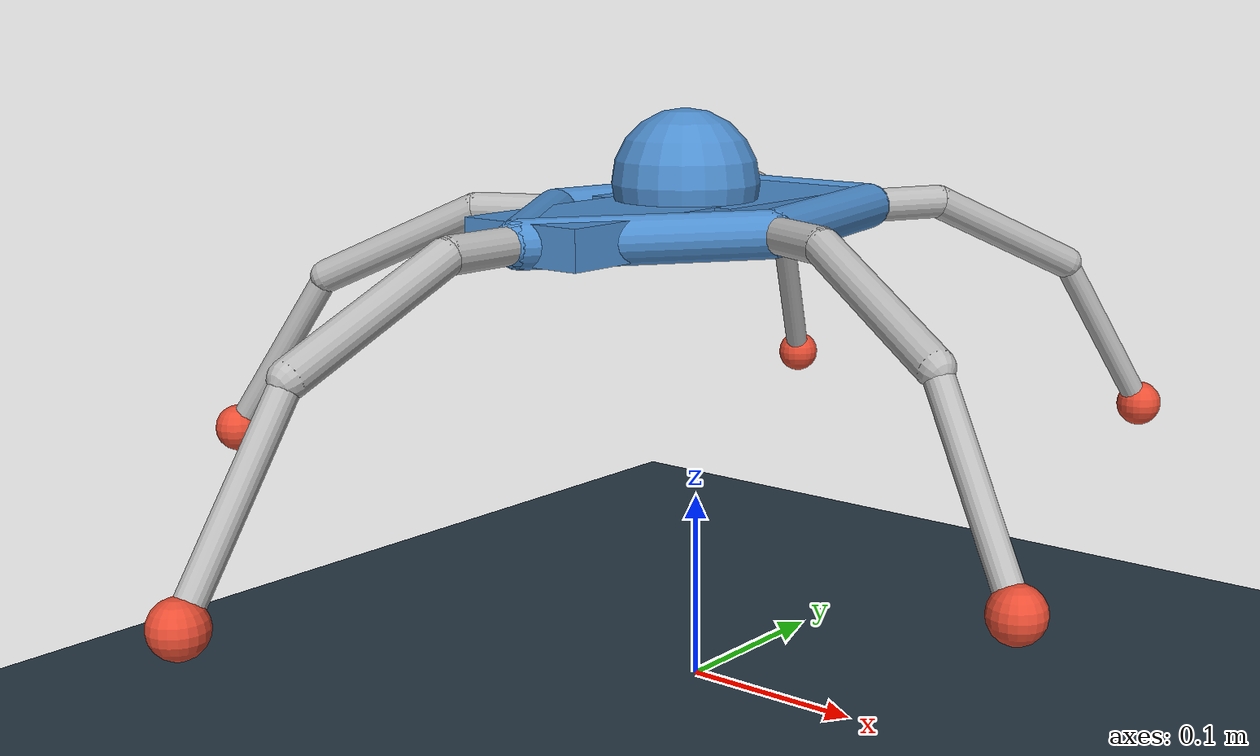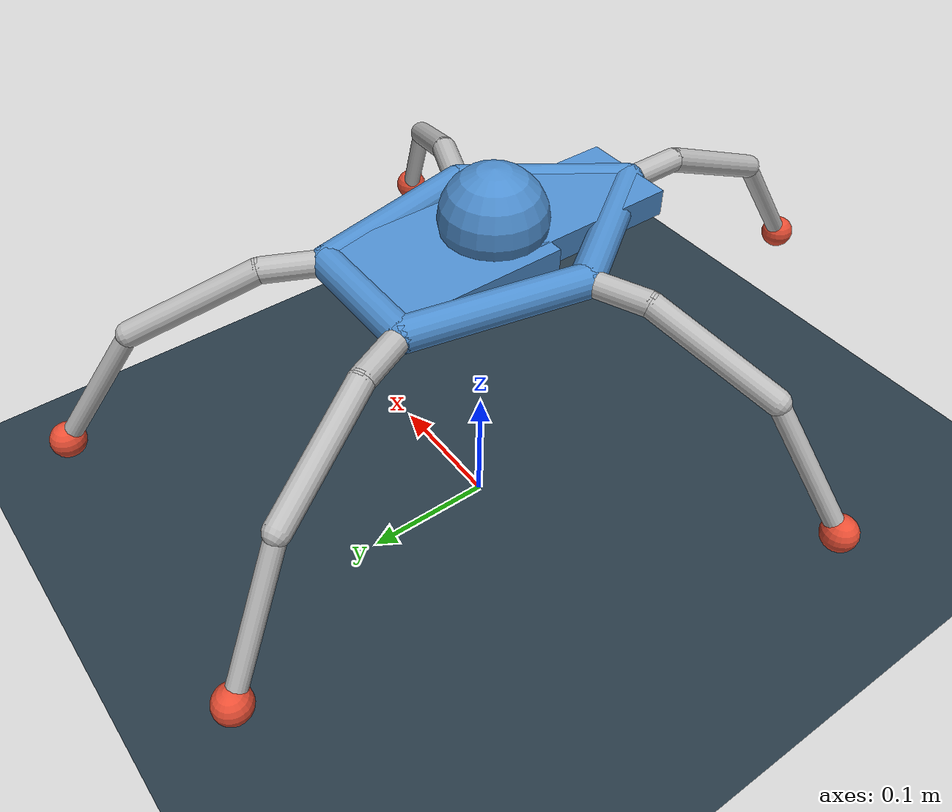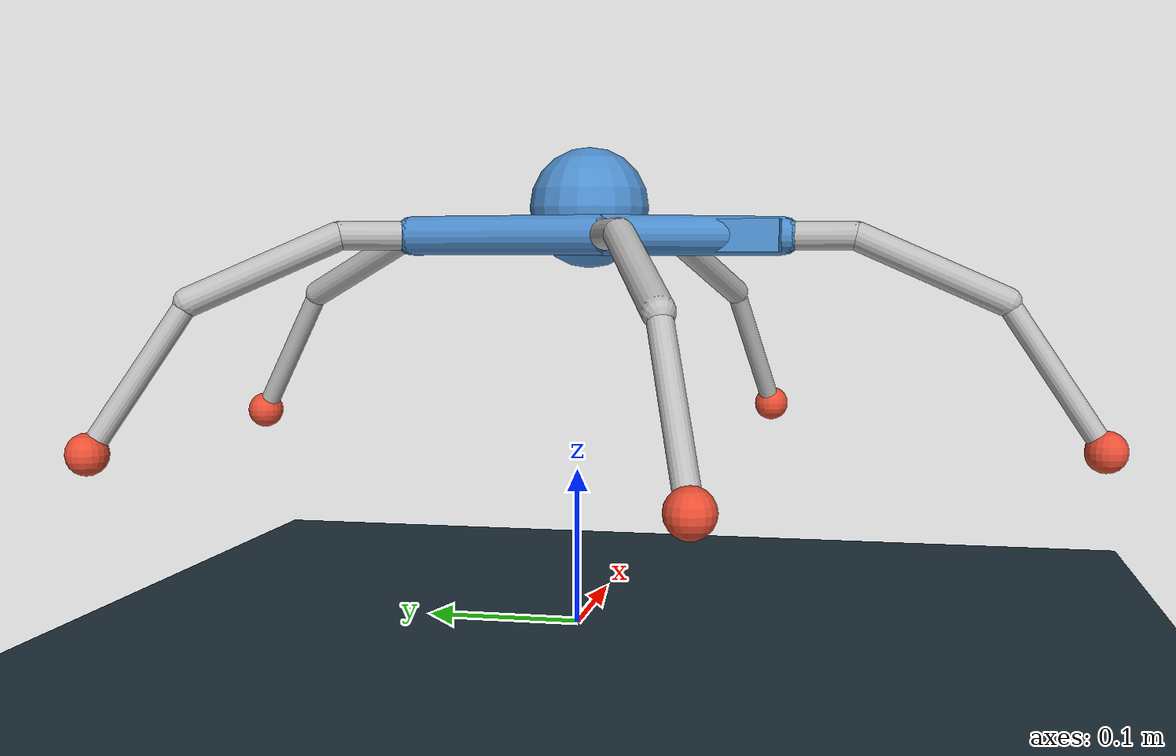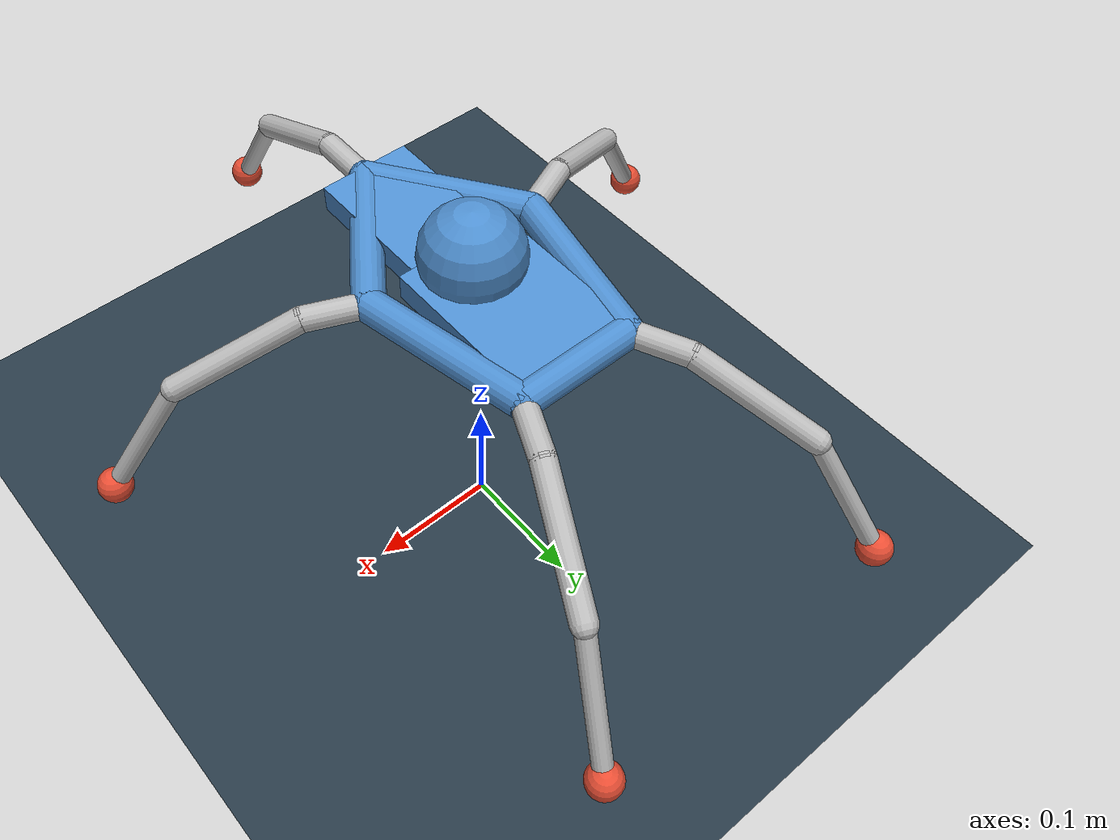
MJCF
<mujoco model="pentapod">
  <compiler angle="degree" autolimits="true"/>
  <option gravity="0 0 -9.81" timestep="0.002"/>

  <asset>
    <texture type="skybox" builtin="gradient" rgb1=".25 .35 .45" rgb2="0 0 0" width="32" height="512"/>
    <texture name="grid" type="2d" builtin="checker" width="512" height="512" rgb1=".12 .18 .22" rgb2=".18 .26 .32"/>
    <material name="grid"     texture="grid" texrepeat="4 4" texuniform="true" reflectance=".15"/>
    <material name="body_mat" rgba=".30 .55 .80 1"/>
    <material name="leg_mat"  rgba=".72 .72 .72 1"/>
    <material name="foot_mat" rgba=".90 .30 .20 1"/>
  </asset>

  <default>
    <joint damping="0.10" stiffness="0.0" frictionloss="0.01"/>
    <geom contype="1" conaffinity="1" condim="3" friction="0.8 0.005 0.0001"/>
    <position kp="5" forcelimited="true" forcerange="-2 2"/>
  </default>

  <contact>
    <exclude body1="base" body2="coxa_0"/>
    <exclude body1="base" body2="femur_0"/>
    <exclude body1="base" body2="tibia_0"/>
    <exclude body1="base" body2="coxa_1"/>
    <exclude body1="base" body2="femur_1"/>
    <exclude body1="base" body2="tibia_1"/>
    <exclude body1="base" body2="coxa_2"/>
    <exclude body1="base" body2="femur_2"/>
    <exclude body1="base" body2="tibia_2"/>
    <exclude body1="base" body2="coxa_3"/>
    <exclude body1="base" body2="femur_3"/>
    <exclude body1="base" body2="tibia_3"/>
    <exclude body1="base" body2="coxa_4"/>
    <exclude body1="base" body2="femur_4"/>
    <exclude body1="base" body2="tibia_4"/>
    <exclude body1="coxa_0" body2="coxa_1"/>
    <exclude body1="coxa_1" body2="coxa_2"/>
    <exclude body1="coxa_2" body2="coxa_3"/>
    <exclude body1="coxa_3" body2="coxa_4"/>
    <exclude body1="coxa_4" body2="coxa_0"/>
    <exclude body1="femur_0" body2="femur_1"/>
    <exclude body1="femur_1" body2="femur_2"/>
    <exclude body1="femur_2" body2="femur_3"/>
    <exclude body1="femur_3" body2="femur_4"/>
    <exclude body1="femur_4" body2="femur_0"/>
  </contact>

  <worldbody>
    <light name="sun"  pos="0 0 2.0" dir="0 0 -1"  diffuse="1 1 1"     specular="0.3 0.3 0.3"/>
    <light name="fill" pos="1 -1 1"  dir="-1 1 -1" diffuse="0.4 0.4 0.5" specular="0 0 0"/>
    <geom name="floor" type="plane" size="3 3 .1" material="grid"/>

    <body name="base" pos="0 0 0.25">
      <freejoint name="root"/>
      <inertial mass="0.083" pos="0.0 -0.120 0" diaginertia="0.00005 0.00018 0.00014"/>
      <!-- Pentagon frame: 5 capsule edges -->
      <!-- Top edge  L0–L1 (short) -->
      <geom name="edge_01" type="capsule"
            fromto="-0.0439  0.0946 0   0.0439  0.0946 0"
            size="0.012" material="body_mat"/>
      <!-- Upper-right edge  L1–L2 -->
      <geom name="edge_12" type="capsule"
            fromto=" 0.0439  0.0946 0   0.0703 -0.0296 0"
            size="0.012" material="body_mat"/>
      <!-- Lower-right edge  L2–L3 (long) -->
      <geom name="edge_23" type="capsule"
            fromto=" 0.0703 -0.0296 0   0.0000 -0.1300 0"
            size="0.012" material="body_mat"/>
      <!-- Lower-left edge  L3–L4 (long) -->
      <geom name="edge_34" type="capsule"
            fromto=" 0.0000 -0.1300 0  -0.0703 -0.0296 0"
            size="0.012" material="body_mat"/>
      <!-- Upper-left edge  L4–L0 -->
      <geom name="edge_40" type="capsule"
            fromto="-0.0703 -0.0296 0  -0.0439  0.0946 0"
            size="0.012" material="body_mat"/>
      <!-- Fill panels -->
      <geom name="fill_top" type="box"
            pos="0.000  0.033 0" size="0.045 0.062 0.010" material="body_mat"/>
      <geom name="fill_bot" type="box"
            pos="0.000 -0.074 0" size="0.035 0.056 0.010" material="body_mat"/>
      <geom name="dome" type="sphere" size="0.038" pos="0 -0.008 0.018" material="body_mat"/>

      <!-- LEG 0  top-left  (115 deg) — SWING/ARM leg -->
      <body name="coxa_0" pos="-0.0439 0.0946 0" euler="0 0 115">
        <joint name="hip_0" type="hinge" axis="0 0 1" range="-45 45"/>
        <inertial mass="0.019" pos="0.022 0 0" diaginertia="1e-6 1e-6 1e-6"/><!-- coxa: shell+SG90+bracket=18.6g -->
        <geom name="coxa_geom_0" type="capsule" fromto="0 0 0  0.045 0 0" size="0.009" material="leg_mat"/>
        <body name="femur_0" pos="0.045 0 0">
          <joint name="knee_0" type="hinge" axis="0 1 0" range="-80 20"/>
          <inertial mass="0.074" pos="0.045 0 -0.020" diaginertia="0.000023 0.000073 0.000073"/><!-- femur: shell+MG996R+bracket=74g -->
          <geom name="femur_geom_0" type="capsule" fromto="0 0 0  0.090 0 -0.040" size="0.009" material="leg_mat"/>
          <body name="tibia_0" pos="0.090 0 -0.040">
            <joint name="ankle_0" type="hinge" axis="0 1 0" range="-20 80"/>
            <inertial mass="0.072" pos="0.030 0 -0.045" diaginertia="0.000014 0.000079 0.000079"/><!-- tibia: shell+MG996R+bracket=71.5g -->
            <geom name="tibia_geom_0" type="capsule" fromto="0 0 0  0.060 0 -0.090" size="0.007" material="leg_mat"/>
            <geom name="foot_0" type="sphere" size="0.013" pos="0.060 0 -0.090" material="foot_mat" condim="6" friction="1.2 0.005 0.0001"/>
            <site name="foot_0_site" pos="0.060 0 -0.090" size="0.013"/>
          </body>
        </body>
      </body>

      <!-- LEG 1  top-right  (65 deg) — SWING/ARM leg -->
      <body name="coxa_1" pos="0.0439 0.0946 0" euler="0 0 65">
        <joint name="hip_1" type="hinge" axis="0 0 1" range="-45 45"/>
        <inertial mass="0.019" pos="0.022 0 0" diaginertia="1e-6 1e-6 1e-6"/><!-- coxa: shell+SG90+bracket=18.6g -->
        <geom name="coxa_geom_1" type="capsule" fromto="0 0 0  0.045 0 0" size="0.009" material="leg_mat"/>
        <body name="femur_1" pos="0.045 0 0">
          <joint name="knee_1" type="hinge" axis="0 1 0" range="-80 20"/>
          <inertial mass="0.074" pos="0.045 0 -0.020" diaginertia="0.000023 0.000073 0.000073"/><!-- femur: shell+MG996R+bracket=74g -->
          <geom name="femur_geom_1" type="capsule" fromto="0 0 0  0.090 0 -0.040" size="0.009" material="leg_mat"/>
          <body name="tibia_1" pos="0.090 0 -0.040">
            <joint name="ankle_1" type="hinge" axis="0 1 0" range="-20 80"/>
            <inertial mass="0.072" pos="0.030 0 -0.045" diaginertia="0.000014 0.000079 0.000079"/><!-- tibia: shell+MG996R+bracket=71.5g -->
            <geom name="tibia_geom_1" type="capsule" fromto="0 0 0  0.060 0 -0.090" size="0.007" material="leg_mat"/>
            <geom name="foot_1" type="sphere" size="0.013" pos="0.060 0 -0.090" material="foot_mat" condim="6" friction="1.2 0.005 0.0001"/>
            <site name="foot_1_site" pos="0.060 0 -0.090" size="0.013"/>
          </body>
        </body>
      </body>

      <!-- LEG 2  right  (-23 deg) — TRIPOD leg -->
      <body name="coxa_2" pos="0.0703 -0.0296 0" euler="0 0 -23">
        <joint name="hip_2" type="hinge" axis="0 0 1" range="-45 45"/>
        <inertial mass="0.019" pos="0.022 0 0" diaginertia="1e-6 1e-6 1e-6"/><!-- coxa: shell+SG90+bracket=18.6g -->
        <geom name="coxa_geom_2" type="capsule" fromto="0 0 0  0.045 0 0" size="0.009" material="leg_mat"/>
        <body name="femur_2" pos="0.045 0 0">
          <joint name="knee_2" type="hinge" axis="0 1 0" range="-80 20"/>
          <inertial mass="0.074" pos="0.045 0 -0.020" diaginertia="0.000023 0.000073 0.000073"/><!-- femur: shell+MG996R+bracket=74g -->
          <geom name="femur_geom_2" type="capsule" fromto="0 0 0  0.090 0 -0.040" size="0.009" material="leg_mat"/>
          <body name="tibia_2" pos="0.090 0 -0.040">
            <joint name="ankle_2" type="hinge" axis="0 1 0" range="-20 80"/>
            <inertial mass="0.072" pos="0.030 0 -0.045" diaginertia="0.000014 0.000079 0.000079"/><!-- tibia: shell+MG996R+bracket=71.5g -->
            <geom name="tibia_geom_2" type="capsule" fromto="0 0 0  0.060 0 -0.090" size="0.007" material="leg_mat"/>
            <geom name="foot_2" type="sphere" size="0.013" pos="0.060 0 -0.090" material="foot_mat" condim="6" friction="1.2 0.005 0.0001"/>
            <site name="foot_2_site" pos="0.060 0 -0.090" size="0.013"/>
          </body>
        </body>
      </body>

      <!-- LEG 3  bottom  (-90 deg) — TRIPOD leg -->
      <body name="coxa_3" pos="0.0000 -0.1300 0" euler="0 0 -90">
        <joint name="hip_3" type="hinge" axis="0 0 1" range="-45 45"/>
        <inertial mass="0.019" pos="0.022 0 0" diaginertia="1e-6 1e-6 1e-6"/><!-- coxa: shell+SG90+bracket=18.6g -->
        <geom name="coxa_geom_3" type="capsule" fromto="0 0 0  0.045 0 0" size="0.009" material="leg_mat"/>
        <body name="femur_3" pos="0.045 0 0">
          <joint name="knee_3" type="hinge" axis="0 1 0" range="-80 20"/>
          <inertial mass="0.074" pos="0.045 0 -0.020" diaginertia="0.000023 0.000073 0.000073"/><!-- femur: shell+MG996R+bracket=74g -->
          <geom name="femur_geom_3" type="capsule" fromto="0 0 0  0.090 0 -0.040" size="0.009" material="leg_mat"/>
          <body name="tibia_3" pos="0.090 0 -0.040">
            <joint name="ankle_3" type="hinge" axis="0 1 0" range="-20 80"/>
            <inertial mass="0.072" pos="0.030 0 -0.045" diaginertia="0.000014 0.000079 0.000079"/><!-- tibia: shell+MG996R+bracket=71.5g -->
            <geom name="tibia_geom_3" type="capsule" fromto="0 0 0  0.060 0 -0.090" size="0.007" material="leg_mat"/>
            <geom name="foot_3" type="sphere" size="0.013" pos="0.060 0 -0.090" material="foot_mat" condim="6" friction="1.2 0.005 0.0001"/>
            <site name="foot_3_site" pos="0.060 0 -0.090" size="0.013"/>
          </body>
        </body>
      </body>

      <!-- LEG 4  left  (-157 deg) — TRIPOD leg -->
      <body name="coxa_4" pos="-0.0703 -0.0296 0" euler="0 0 -157">
        <joint name="hip_4" type="hinge" axis="0 0 1" range="-45 45"/>
        <inertial mass="0.019" pos="0.022 0 0" diaginertia="1e-6 1e-6 1e-6"/><!-- coxa: shell+SG90+bracket=18.6g -->
        <geom name="coxa_geom_4" type="capsule" fromto="0 0 0  0.045 0 0" size="0.009" material="leg_mat"/>
        <body name="femur_4" pos="0.045 0 0">
          <joint name="knee_4" type="hinge" axis="0 1 0" range="-80 20"/>
          <inertial mass="0.074" pos="0.045 0 -0.020" diaginertia="0.000023 0.000073 0.000073"/><!-- femur: shell+MG996R+bracket=74g -->
          <geom name="femur_geom_4" type="capsule" fromto="0 0 0  0.090 0 -0.040" size="0.009" material="leg_mat"/>
          <body name="tibia_4" pos="0.090 0 -0.040">
            <joint name="ankle_4" type="hinge" axis="0 1 0" range="-20 80"/>
            <inertial mass="0.072" pos="0.030 0 -0.045" diaginertia="0.000014 0.000079 0.000079"/><!-- tibia: shell+MG996R+bracket=71.5g -->
            <geom name="tibia_geom_4" type="capsule" fromto="0 0 0  0.060 0 -0.090" size="0.007" material="leg_mat"/>
            <geom name="foot_4" type="sphere" size="0.013" pos="0.060 0 -0.090" material="foot_mat" condim="6" friction="1.2 0.005 0.0001"/>
            <site name="foot_4_site" pos="0.060 0 -0.090" size="0.013"/>
          </body>
        </body>
      </body>

    </body>
  </worldbody>

  <actuator>
    <position name="act_hip_0"   joint="hip_0"   kp="5" ctrlrange="-45 45"/>
    <position name="act_knee_0"  joint="knee_0"  kp="5" ctrlrange="-80 20"/>
    <position name="act_ankle_0" joint="ankle_0" kp="4" ctrlrange="-20 80"/>
    <position name="act_hip_1"   joint="hip_1"   kp="5" ctrlrange="-45 45"/>
    <position name="act_knee_1"  joint="knee_1"  kp="5" ctrlrange="-80 20"/>
    <position name="act_ankle_1" joint="ankle_1" kp="4" ctrlrange="-20 80"/>
    <position name="act_hip_2"   joint="hip_2"   kp="5" ctrlrange="-45 45"/>
    <position name="act_knee_2"  joint="knee_2"  kp="5" ctrlrange="-80 20"/>
    <position name="act_ankle_2" joint="ankle_2" kp="4" ctrlrange="-20 80"/>
    <position name="act_hip_3"   joint="hip_3"   kp="5" ctrlrange="-45 45"/>
    <position name="act_knee_3"  joint="knee_3"  kp="5" ctrlrange="-80 20"/>
    <position name="act_ankle_3" joint="ankle_3" kp="4" ctrlrange="-20 80"/>
    <position name="act_hip_4"   joint="hip_4"   kp="5" ctrlrange="-45 45"/>
    <position name="act_knee_4"  joint="knee_4"  kp="5" ctrlrange="-80 20"/>
    <position name="act_ankle_4" joint="ankle_4" kp="4" ctrlrange="-20 80"/>
  </actuator>

  <sensor>
    <touch name="touch_foot_0" site="foot_0_site"/>
    <touch name="touch_foot_1" site="foot_1_site"/>
    <touch name="touch_foot_2" site="foot_2_site"/>
    <touch name="touch_foot_3" site="foot_3_site"/>
    <touch name="touch_foot_4" site="foot_4_site"/>
  </sensor>

</mujoco>
